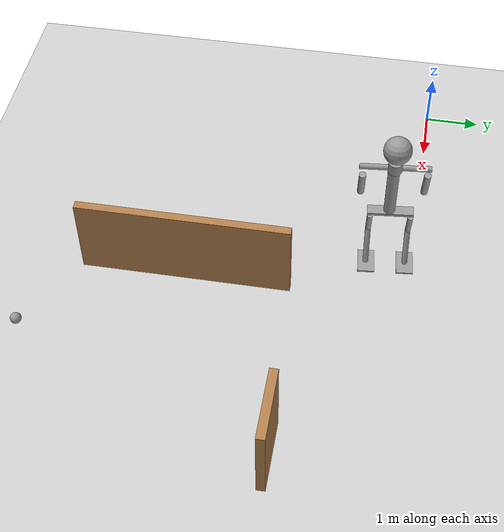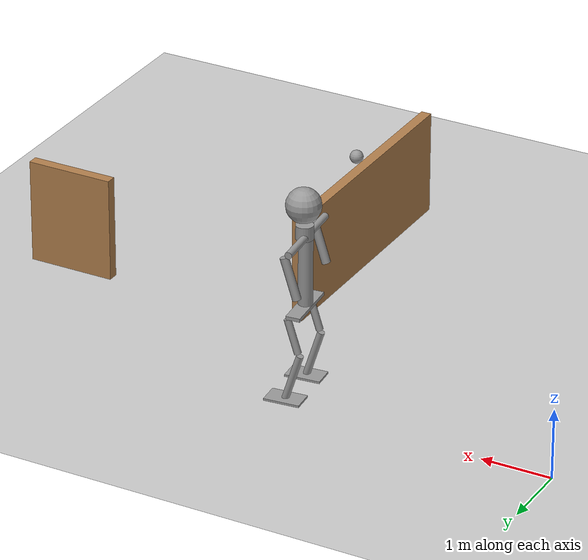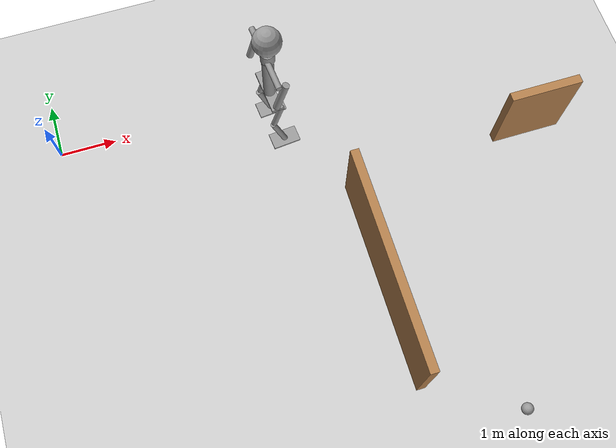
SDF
<sdf version="1.6">
 <world name="default">
  <model name="ground_plane">
   <static>1</static>
   <link name="link">
    <collision name="collision">
     <geometry><plane><normal>0 0 1</normal><size>100 100</size></plane></geometry>
     <surface><friction><ode><mu>100</mu><mu2>50</mu2></ode></friction></surface>
    </collision>
    <visual name="visual">
     <cast_shadows>0</cast_shadows>
     <geometry><plane><normal>0 0 1</normal><size>100 100</size></plane></geometry>
     <material>
      <script><uri>file://media/materials/scripts/gazebo.material</uri><name>Gazebo/Grey</name></script>
     </material>
    </visual>
   </link>
  </model>
  <model name="Building">
   <pose>-0.293126 -0.203944 0 0 -0 0</pose>
   <link name="Wall_21">
    <collision name="Wall_21_Collision">
     <geometry><box><size>3.75 0.15 1.5</size></box></geometry>
     <pose>0 0 0.75 0 -0 0</pose>
    </collision>
    <visual name="Wall_21_Visual">
     <pose>0 0 0.75 0 -0 0</pose>
     <geometry><box><size>3.75 0.15 1.5</size></box></geometry>
     <material>
      <script><uri>file://media/materials/scripts/gazebo.material</uri><name>Gazebo/Wood</name></script>
      <ambient>1 1 1 1</ambient>
     </material>
     <meta><layer>0</layer></meta>
    </visual>
    <pose>5.09526 -3.75796 0 0 -0 1.5708</pose>
   </link>
   <link name="Wall_60">
    <collision name="Wall_60_Collision">
     <geometry><box><size>1.25 0.15 1.5</size></box></geometry>
     <pose>0 0 0.75 0 -0 0</pose>
    </collision>
    <visual name="Wall_60_Visual">
     <pose>0 0 0.75 0 -0 0</pose>
     <geometry><box><size>1.25 0.15 1.5</size></box></geometry>
     <material>
      <script><uri>file://media/materials/scripts/gazebo.material</uri><name>Gazebo/Wood</name></script>
      <ambient>1 1 1 1</ambient>
     </material>
     <meta><layer>0</layer></meta>
    </visual>
    <pose>8.50626 -1.72796 0 0 -0 3.14159</pose>
   </link>
   <static>1</static>
  </model>
  <model name="HumanoidRobot_3">
   <model name="Untitled">
    <model name="HumanoidRobot">
     <link name="link_1">
      <pose>-0.173443 0.410402 2.12746 0 -0 0</pose>
      <inertial>
       <mass>0.94</mass>
       <inertia><ixx>0.1</ixx><ixy>0</ixy><ixz>0</ixz><iyy>0.1</iyy><iyz>0</iyz><izz>0.1</izz></inertia>
      </inertial>
      <visual name="visual">
       <geometry><sphere><radius>0.24</radius></sphere></geometry>
       <material>
        <lighting>1</lighting>
        <script><uri>file://media/materials/scripts/gazebo.material</uri><name>Gazebo/Grey</name></script>
        <shader type="pixel"><normal_map>__default__</normal_map></shader>
        <ambient>0.3 0.3 0.3 1</ambient>
        <diffuse>0.7 0.7 0.7 1</diffuse>
        <specular>0.01 0.01 0.01 1</specular>
        <emissive>0 0 0 1</emissive>
       </material>
      </visual>
      <collision name="collision">
       <geometry><sphere><radius>0.24</radius></sphere></geometry>
       <surface>
        <friction>
         <ode><mu>1</mu><mu2>1</mu2><fdir1>0 0 0</fdir1><slip1>0</slip1><slip2>0</slip2></ode>
         <torsional>
          <coefficient>1</coefficient>
          <patch_radius>0</patch_radius>
          <surface_radius>0</surface_radius>
          <use_patch_radius>1</use_patch_radius>
          <ode><slip>0</slip></ode>
         </torsional>
        </friction>
        <bounce><restitution_coefficient>0</restitution_coefficient><threshold>1e+06</threshold></bounce>
        <contact>
         <collide_without_contact>0</collide_without_contact>
         <collide_without_contact_bitmask>1</collide_without_contact_bitmask>
         <collide_bitmask>1</collide_bitmask>
         <ode>
          <soft_cfm>0</soft_cfm>
          <soft_erp>0.2</soft_erp>
          <kp>1e+13</kp>
          <kd>1</kd>
          <max_vel>0.01</max_vel>
          <min_depth>0</min_depth>
         </ode>
         <bullet>
          <split_impulse>1</split_impulse>
          <split_impulse_penetration_threshold>-0.01</split_impulse_penetration_threshold>
          <soft_cfm>0</soft_cfm>
          <soft_erp>0.2</soft_erp>
          <kp>1e+13</kp>
          <kd>1</kd>
         </bullet>
        </contact>
       </surface>
      </collision>
     </link>
     <link name="link_2">
      <pose>-0.183443 0.400402 1.74746 0 -0 0</pose>
      <inertial>
       <mass>1</mass>
       <inertia><ixx>0.145833</ixx><ixy>0</ixy><ixz>0</ixz><iyy>0.145833</iyy><iyz>0</iyz><izz>0.125</izz></inertia>
      </inertial>
      <visual name="visual">
       <geometry><cylinder><radius>0.12</radius><length>0.2</length></cylinder></geometry>
       <material>
        <lighting>1</lighting>
        <script><uri>file://media/materials/scripts/gazebo.material</uri><name>Gazebo/Grey</name></script>
        <shader type="pixel"><normal_map>__default__</normal_map></shader>
        <ambient>0.3 0.3 0.3 1</ambient>
        <diffuse>0.7 0.7 0.7 1</diffuse>
        <specular>0.01 0.01 0.01 1</specular>
        <emissive>0 0 0 1</emissive>
       </material>
      </visual>
      <collision name="collision">
       <geometry><cylinder><radius>0.12</radius><length>0.2</length></cylinder></geometry>
       <surface>
        <friction>
         <ode><mu>1</mu><mu2>1</mu2><fdir1>0 0 0</fdir1><slip1>0</slip1><slip2>0</slip2></ode>
         <torsional>
          <coefficient>1</coefficient>
          <patch_radius>0</patch_radius>
          <surface_radius>0</surface_radius>
          <use_patch_radius>1</use_patch_radius>
          <ode><slip>0</slip></ode>
         </torsional>
        </friction>
        <bounce><restitution_coefficient>0</restitution_coefficient><threshold>1e+06</threshold></bounce>
        <contact>
         <collide_without_contact>0</collide_without_contact>
         <collide_without_contact_bitmask>1</collide_without_contact_bitmask>
         <collide_bitmask>1</collide_bitmask>
         <ode>
          <soft_cfm>0</soft_cfm>
          <soft_erp>0.2</soft_erp>
          <kp>1e+13</kp>
          <kd>1</kd>
          <max_vel>0.01</max_vel>
          <min_depth>0</min_depth>
         </ode>
         <bullet>
          <split_impulse>1</split_impulse>
          <split_impulse_penetration_threshold>-0.01</split_impulse_penetration_threshold>
          <soft_cfm>0</soft_cfm>
          <soft_erp>0.2</soft_erp>
          <kp>1e+13</kp>
          <kd>1</kd>
         </bullet>
        </contact>
       </surface>
      </collision>
     </link>
     <link name="link_3">
      <pose>-0.218443 0.410402 1.69752 0 -0 0</pose>
      <inertial>
       <mass>1</mass>
       <inertia><ixx>0.145833</ixx><ixy>0</ixy><ixz>0</ixz><iyy>0.145833</iyy><iyz>0</iyz><izz>0.125</izz></inertia>
      </inertial>
      <visual name="visual">
       <pose>0 0 0 1.5707 -0 0</pose>
       <geometry><cylinder><radius>0.05</radius><length>1.2</length></cylinder></geometry>
       <material>
        <lighting>1</lighting>
        <script><uri>file://media/materials/scripts/gazebo.material</uri><name>Gazebo/Grey</name></script>
        <shader type="pixel"><normal_map>__default__</normal_map></shader>
        <ambient>0.3 0.3 0.3 1</ambient>
        <diffuse>0.7 0.7 0.7 1</diffuse>
        <specular>0.01 0.01 0.01 1</specular>
        <emissive>0 0 0 1</emissive>
       </material>
      </visual>
      <collision name="collision">
       <pose>0 0 0 1.5707 -0 0</pose>
       <geometry><cylinder><radius>0.05</radius><length>1.2</length></cylinder></geometry>
       <surface>
        <friction>
         <ode><mu>1</mu><mu2>1</mu2><fdir1>0 0 0</fdir1><slip1>0</slip1><slip2>0</slip2></ode>
         <torsional>
          <coefficient>1</coefficient>
          <patch_radius>0</patch_radius>
          <surface_radius>0</surface_radius>
          <use_patch_radius>1</use_patch_radius>
          <ode><slip>0</slip></ode>
         </torsional>
        </friction>
        <bounce><restitution_coefficient>0</restitution_coefficient><threshold>1e+06</threshold></bounce>
        <contact>
         <collide_without_contact>0</collide_without_contact>
         <collide_without_contact_bitmask>1</collide_without_contact_bitmask>
         <collide_bitmask>1</collide_bitmask>
         <ode>
          <soft_cfm>0</soft_cfm>
          <soft_erp>0.2</soft_erp>
          <kp>1e+13</kp>
          <kd>1</kd>
          <max_vel>0.01</max_vel>
          <min_depth>0</min_depth>
         </ode>
         <bullet>
          <split_impulse>1</split_impulse>
          <split_impulse_penetration_threshold>-0.01</split_impulse_penetration_threshold>
          <soft_cfm>0</soft_cfm>
          <soft_erp>0.2</soft_erp>
          <kp>1e+13</kp>
          <kd>1</kd>
         </bullet>
        </contact>
       </surface>
      </collision>
     </link>
     <link name="link_4">
      <pose>-0.173443 -0.129603 1.34313 0 -0 0</pose>
      <inertial>
       <mass>1</mass>
       <inertia><ixx>0.145833</ixx><ixy>0</ixy><ixz>0</ixz><iyy>0.145833</iyy><iyz>0</iyz><izz>0.125</izz></inertia>
      </inertial>
      <visual name="visual">
       <pose>0 0 0 0 0.3 0</pose>
       <geometry><cylinder><radius>0.06</radius><length>0.6</length></cylinder></geometry>
       <material>
        <lighting>1</lighting>
        <script><uri>file://media/materials/scripts/gazebo.material</uri><name>Gazebo/Grey</name></script>
        <shader type="pixel"><normal_map>__default__</normal_map></shader>
        <ambient>0.3 0.3 0.3 1</ambient>
        <diffuse>0.7 0.7 0.7 1</diffuse>
        <specular>0.01 0.01 0.01 1</specular>
        <emissive>0 0 0 1</emissive>
       </material>
      </visual>
      <collision name="collision">
       <pose>0 0 0 0 0.3 0</pose>
       <geometry><cylinder><radius>0.06</radius><length>0.6</length></cylinder></geometry>
       <surface>
        <friction>
         <ode><mu>1</mu><mu2>1</mu2><fdir1>0 0 0</fdir1><slip1>0</slip1><slip2>0</slip2></ode>
         <torsional>
          <coefficient>1</coefficient>
          <patch_radius>0</patch_radius>
          <surface_radius>0</surface_radius>
          <use_patch_radius>1</use_patch_radius>
          <ode><slip>0</slip></ode>
         </torsional>
        </friction>
        <bounce><restitution_coefficient>0</restitution_coefficient><threshold>1e+06</threshold></bounce>
        <contact>
         <collide_without_contact>0</collide_without_contact>
         <collide_without_contact_bitmask>1</collide_without_contact_bitmask>
         <collide_bitmask>1</collide_bitmask>
         <ode>
          <soft_cfm>0</soft_cfm>
          <soft_erp>0.2</soft_erp>
          <kp>1e+13</kp>
          <kd>1</kd>
          <max_vel>0.01</max_vel>
          <min_depth>0</min_depth>
         </ode>
         <bullet>
          <split_impulse>1</split_impulse>
          <split_impulse_penetration_threshold>-0.01</split_impulse_penetration_threshold>
          <soft_cfm>0</soft_cfm>
          <soft_erp>0.2</soft_erp>
          <kp>1e+13</kp>
          <kd>1</kd>
         </bullet>
        </contact>
       </surface>
      </collision>
     </link>
     <link name="link_4_clone">
      <pose>-0.224419 0.950407 1.34313 0 -0 0</pose>
      <inertial>
       <mass>1</mass>
       <inertia><ixx>0.145833</ixx><ixy>0</ixy><ixz>0</ixz><iyy>0.145833</iyy><iyz>0</iyz><izz>0.125</izz></inertia>
      </inertial>
      <visual name="visual">
       <pose>0 0 0 0 0.3 0</pose>
       <geometry><cylinder><radius>0.06</radius><length>0.6</length></cylinder></geometry>
       <material>
        <lighting>1</lighting>
        <script><uri>file://media/materials/scripts/gazebo.material</uri><name>Gazebo/Grey</name></script>
        <shader type="pixel"><normal_map>__default__</normal_map></shader>
        <ambient>0.3 0.3 0.3 1</ambient>
        <diffuse>0.7 0.7 0.7 1</diffuse>
        <specular>0.01 0.01 0.01 1</specular>
        <emissive>0 0 0 1</emissive>
       </material>
      </visual>
      <collision name="collision">
       <pose>0 0 0 0 0.3 0</pose>
       <geometry><cylinder><radius>0.06</radius><length>0.6</length></cylinder></geometry>
       <surface>
        <friction>
         <ode><mu>1</mu><mu2>1</mu2><fdir1>0 0 0</fdir1><slip1>0</slip1><slip2>0</slip2></ode>
         <torsional>
          <coefficient>1</coefficient>
          <patch_radius>0</patch_radius>
          <surface_radius>0</surface_radius>
          <use_patch_radius>1</use_patch_radius>
          <ode><slip>0</slip></ode>
         </torsional>
        </friction>
        <bounce><restitution_coefficient>0</restitution_coefficient><threshold>1e+06</threshold></bounce>
        <contact>
         <collide_without_contact>0</collide_without_contact>
         <collide_without_contact_bitmask>1</collide_without_contact_bitmask>
         <collide_bitmask>1</collide_bitmask>
         <ode>
          <soft_cfm>0</soft_cfm>
          <soft_erp>0.2</soft_erp>
          <kp>1e+13</kp>
          <kd>1</kd>
          <max_vel>0.01</max_vel>
          <min_depth>0</min_depth>
         </ode>
         <bullet>
          <split_impulse>1</split_impulse>
          <split_impulse_penetration_threshold>-0.01</split_impulse_penetration_threshold>
          <soft_cfm>0</soft_cfm>
          <soft_erp>0.2</soft_erp>
          <kp>1e+13</kp>
          <kd>1</kd>
         </bullet>
        </contact>
       </surface>
      </collision>
     </link>
     <link name="link_5">
      <pose>-0.193443 0.390402 1.14746 0 -0 0</pose>
      <inertial>
       <mass>1</mass>
       <inertia><ixx>0.145833</ixx><ixy>0</ixy><ixz>0</ixz><iyy>0.145833</iyy><iyz>0</iyz><izz>0.125</izz></inertia>
      </inertial>
      <visual name="visual">
       <geometry><cylinder><radius>0.1</radius><length>1</length></cylinder></geometry>
       <material>
        <lighting>1</lighting>
        <script><uri>file://media/materials/scripts/gazebo.material</uri><name>Gazebo/Grey</name></script>
        <shader type="pixel"><normal_map>__default__</normal_map></shader>
        <ambient>0.3 0.3 0.3 1</ambient>
        <diffuse>0.7 0.7 0.7 1</diffuse>
        <specular>0.01 0.01 0.01 1</specular>
        <emissive>0 0 0 1</emissive>
       </material>
      </visual>
      <collision name="collision">
       <geometry><cylinder><radius>0.1</radius><length>1</length></cylinder></geometry>
       <surface>
        <friction>
         <ode><mu>1</mu><mu2>1</mu2><fdir1>0 0 0</fdir1><slip1>0</slip1><slip2>0</slip2></ode>
         <torsional>
          <coefficient>1</coefficient>
          <patch_radius>0</patch_radius>
          <surface_radius>0</surface_radius>
          <use_patch_radius>1</use_patch_radius>
          <ode><slip>0</slip></ode>
         </torsional>
        </friction>
        <bounce><restitution_coefficient>0</restitution_coefficient><threshold>1e+06</threshold></bounce>
        <contact>
         <collide_without_contact>0</collide_without_contact>
         <collide_without_contact_bitmask>1</collide_without_contact_bitmask>
         <collide_bitmask>1</collide_bitmask>
         <ode>
          <soft_cfm>0</soft_cfm>
          <soft_erp>0.2</soft_erp>
          <kp>1e+13</kp>
          <kd>1</kd>
          <max_vel>0.01</max_vel>
          <min_depth>0</min_depth>
         </ode>
         <bullet>
          <split_impulse>1</split_impulse>
          <split_impulse_penetration_threshold>-0.01</split_impulse_penetration_threshold>
          <soft_cfm>0</soft_cfm>
          <soft_erp>0.2</soft_erp>
          <kp>1e+13</kp>
          <kd>1</kd>
         </bullet>
        </contact>
       </surface>
      </collision>
     </link>
     <link name="link_6">
      <pose>-0.193443 0.410402 0.672459 0 -0 0</pose>
      <inertial>
       <mass>1</mass>
       <inertia>
        <ixx>0.166667</ixx>
        <ixy>0</ixy>
        <ixz>0</ixz>
        <iyy>0.166667</iyy>
        <iyz>0</iyz>
        <izz>0.166667</izz>
       </inertia>
      </inertial>
      <visual name="visual">
       <geometry><box><size>0.2 0.8 0.05</size></box></geometry>
       <material>
        <lighting>1</lighting>
        <script><uri>file://media/materials/scripts/gazebo.material</uri><name>Gazebo/Grey</name></script>
        <shader type="pixel"><normal_map>__default__</normal_map></shader>
        <ambient>0.3 0.3 0.3 1</ambient>
        <diffuse>0.7 0.7 0.7 1</diffuse>
        <specular>0.01 0.01 0.01 1</specular>
        <emissive>0 0 0 1</emissive>
       </material>
      </visual>
      <collision name="collision">
       <geometry><box><size>0.2 0.8 0.05</size></box></geometry>
       <surface>
        <friction>
         <ode><mu>1</mu><mu2>1</mu2><fdir1>0 0 0</fdir1><slip1>0</slip1><slip2>0</slip2></ode>
         <torsional>
          <coefficient>1</coefficient>
          <patch_radius>0</patch_radius>
          <surface_radius>0</surface_radius>
          <use_patch_radius>1</use_patch_radius>
          <ode><slip>0</slip></ode>
         </torsional>
        </friction>
        <bounce><restitution_coefficient>0</restitution_coefficient><threshold>1e+06</threshold></bounce>
        <contact>
         <collide_without_contact>0</collide_without_contact>
         <collide_without_contact_bitmask>1</collide_without_contact_bitmask>
         <collide_bitmask>1</collide_bitmask>
         <ode>
          <soft_cfm>0</soft_cfm>
          <soft_erp>0.2</soft_erp>
          <kp>1e+13</kp>
          <kd>1</kd>
          <max_vel>0.01</max_vel>
          <min_depth>0</min_depth>
         </ode>
         <bullet>
          <split_impulse>1</split_impulse>
          <split_impulse_penetration_threshold>-0.01</split_impulse_penetration_threshold>
          <soft_cfm>0</soft_cfm>
          <soft_erp>0.2</soft_erp>
          <kp>1e+13</kp>
          <kd>1</kd>
         </bullet>
        </contact>
       </surface>
      </collision>
     </link>
     <link name="link_7">
      <pose>-0.18262 0.060402 0.393848 0 -0 0</pose>
      <inertial>
       <mass>1</mass>
       <inertia><ixx>0.145833</ixx><ixy>0</ixy><ixz>0</ixz><iyy>0.145833</iyy><iyz>0</iyz><izz>0.125</izz></inertia>
      </inertial>
      <visual name="visual">
       <pose>0 0 0 0 0.3 0</pose>
       <geometry><cylinder><radius>0.05</radius><length>0.5</length></cylinder></geometry>
       <material>
        <lighting>1</lighting>
        <script><uri>file://media/materials/scripts/gazebo.material</uri><name>Gazebo/Grey</name></script>
        <shader type="pixel"><normal_map>__default__</normal_map></shader>
        <ambient>0.3 0.3 0.3 1</ambient>
        <diffuse>0.7 0.7 0.7 1</diffuse>
        <specular>0.01 0.01 0.01 1</specular>
        <emissive>0 0 0 1</emissive>
       </material>
      </visual>
      <collision name="collision">
       <pose>0 0 0 0 0.3 0</pose>
       <geometry><cylinder><radius>0.05</radius><length>0.5</length></cylinder></geometry>
       <surface>
        <friction>
         <ode><mu>1</mu><mu2>1</mu2><fdir1>0 0 0</fdir1><slip1>0</slip1><slip2>0</slip2></ode>
         <torsional>
          <coefficient>1</coefficient>
          <patch_radius>0</patch_radius>
          <surface_radius>0</surface_radius>
          <use_patch_radius>1</use_patch_radius>
          <ode><slip>0</slip></ode>
         </torsional>
        </friction>
        <bounce><restitution_coefficient>0</restitution_coefficient><threshold>1e+06</threshold></bounce>
        <contact>
         <collide_without_contact>0</collide_without_contact>
         <collide_without_contact_bitmask>1</collide_without_contact_bitmask>
         <collide_bitmask>1</collide_bitmask>
         <ode>
          <soft_cfm>0</soft_cfm>
          <soft_erp>0.2</soft_erp>
          <kp>1e+13</kp>
          <kd>1</kd>
          <max_vel>0.01</max_vel>
          <min_depth>0</min_depth>
         </ode>
         <bullet>
          <split_impulse>1</split_impulse>
          <split_impulse_penetration_threshold>-0.01</split_impulse_penetration_threshold>
          <soft_cfm>0</soft_cfm>
          <soft_erp>0.2</soft_erp>
          <kp>1e+13</kp>
          <kd>1</kd>
         </bullet>
        </contact>
       </surface>
      </collision>
     </link>
     <link name="link_7_clone">
      <pose>-0.173443 0.760402 0.393849 0 -0 0</pose>
      <inertial>
       <mass>1</mass>
       <inertia><ixx>0.145833</ixx><ixy>0</ixy><ixz>0</ixz><iyy>0.145833</iyy><iyz>0</iyz><izz>0.125</izz></inertia>
      </inertial>
      <visual name="visual">
       <pose>0 0 0 0 0.3 0</pose>
       <geometry><cylinder><radius>0.05</radius><length>0.5</length></cylinder></geometry>
       <material>
        <lighting>1</lighting>
        <script><uri>file://media/materials/scripts/gazebo.material</uri><name>Gazebo/Grey</name></script>
        <shader type="pixel"><normal_map>__default__</normal_map></shader>
        <ambient>0.3 0.3 0.3 1</ambient>
        <diffuse>0.7 0.7 0.7 1</diffuse>
        <specular>0.01 0.01 0.01 1</specular>
        <emissive>0 0 0 1</emissive>
       </material>
      </visual>
      <collision name="collision">
       <pose>0 0 0 0 0.3 0</pose>
       <geometry><cylinder><radius>0.05</radius><length>0.5</length></cylinder></geometry>
       <surface>
        <friction>
         <ode><mu>1</mu><mu2>1</mu2><fdir1>0 0 0</fdir1><slip1>0</slip1><slip2>0</slip2></ode>
         <torsional>
          <coefficient>1</coefficient>
          <patch_radius>0</patch_radius>
          <surface_radius>0</surface_radius>
          <use_patch_radius>1</use_patch_radius>
          <ode><slip>0</slip></ode>
         </torsional>
        </friction>
        <bounce><restitution_coefficient>0</restitution_coefficient><threshold>1e+06</threshold></bounce>
        <contact>
         <collide_without_contact>0</collide_without_contact>
         <collide_without_contact_bitmask>1</collide_without_contact_bitmask>
         <collide_bitmask>1</collide_bitmask>
         <ode>
          <soft_cfm>0</soft_cfm>
          <soft_erp>0.2</soft_erp>
          <kp>1e+13</kp>
          <kd>1</kd>
          <max_vel>0.01</max_vel>
          <min_depth>0</min_depth>
         </ode>
         <bullet>
          <split_impulse>1</split_impulse>
          <split_impulse_penetration_threshold>-0.01</split_impulse_penetration_threshold>
          <soft_cfm>0</soft_cfm>
          <soft_erp>0.2</soft_erp>
          <kp>1e+13</kp>
          <kd>1</kd>
         </bullet>
        </contact>
       </surface>
      </collision>
     </link>
     <link name="link_8">
      <pose>-0.173443 0.060402 -0.208906 0 -0 0</pose>
      <inertial>
       <mass>1</mass>
       <inertia><ixx>0.145833</ixx><ixy>0</ixy><ixz>0</ixz><iyy>0.145833</iyy><iyz>0</iyz><izz>0.125</izz></inertia>
      </inertial>
      <visual name="visual">
       <pose>0 0 0 0 -0.3 0</pose>
       <geometry><cylinder><radius>0.05</radius><length>0.7</length></cylinder></geometry>
       <material>
        <lighting>1</lighting>
        <script><uri>file://media/materials/scripts/gazebo.material</uri><name>Gazebo/Grey</name></script>
        <shader type="pixel"><normal_map>__default__</normal_map></shader>
        <ambient>0.3 0.3 0.3 1</ambient>
        <diffuse>0.7 0.7 0.7 1</diffuse>
        <specular>0.01 0.01 0.01 1</specular>
        <emissive>0 0 0 1</emissive>
       </material>
      </visual>
      <collision name="collision">
       <pose>0 0 0 0 -0.3 0</pose>
       <geometry><cylinder><radius>0.05</radius><length>0.7</length></cylinder></geometry>
       <surface>
        <friction>
         <ode><mu>1</mu><mu2>1</mu2><fdir1>0 0 0</fdir1><slip1>0</slip1><slip2>0</slip2></ode>
         <torsional>
          <coefficient>1</coefficient>
          <patch_radius>0</patch_radius>
          <surface_radius>0</surface_radius>
          <use_patch_radius>1</use_patch_radius>
          <ode><slip>0</slip></ode>
         </torsional>
        </friction>
        <bounce><restitution_coefficient>0</restitution_coefficient><threshold>1e+06</threshold></bounce>
        <contact>
         <collide_without_contact>0</collide_without_contact>
         <collide_without_contact_bitmask>1</collide_without_contact_bitmask>
         <collide_bitmask>1</collide_bitmask>
         <ode>
          <soft_cfm>0</soft_cfm>
          <soft_erp>0.2</soft_erp>
          <kp>1e+13</kp>
          <kd>1</kd>
          <max_vel>0.01</max_vel>
          <min_depth>0</min_depth>
         </ode>
         <bullet>
          <split_impulse>1</split_impulse>
          <split_impulse_penetration_threshold>-0.01</split_impulse_penetration_threshold>
          <soft_cfm>0</soft_cfm>
          <soft_erp>0.2</soft_erp>
          <kp>1e+13</kp>
          <kd>1</kd>
         </bullet>
        </contact>
       </surface>
      </collision>
     </link>
     <link name="link_8_clone">
      <pose>-0.173443 0.760402 -0.208905 0 -0 0</pose>
      <inertial>
       <mass>1</mass>
       <inertia><ixx>0.145833</ixx><ixy>0</ixy><ixz>0</ixz><iyy>0.145833</iyy><iyz>0</iyz><izz>0.125</izz></inertia>
      </inertial>
      <visual name="visual">
       <pose>0 0 0 0 -0.3 0</pose>
       <geometry><cylinder><radius>0.05</radius><length>0.7</length></cylinder></geometry>
       <material>
        <lighting>1</lighting>
        <script><uri>file://media/materials/scripts/gazebo.material</uri><name>Gazebo/Grey</name></script>
        <shader type="pixel"><normal_map>__default__</normal_map></shader>
        <ambient>0.3 0.3 0.3 1</ambient>
        <diffuse>0.7 0.7 0.7 1</diffuse>
        <specular>0.01 0.01 0.01 1</specular>
        <emissive>0 0 0 1</emissive>
       </material>
      </visual>
      <collision name="collision">
       <pose>0 0 0 0 -0.3 0</pose>
       <geometry><cylinder><radius>0.05</radius><length>0.7</length></cylinder></geometry>
       <surface>
        <friction>
         <ode><mu>1</mu><mu2>1</mu2><fdir1>0 0 0</fdir1><slip1>0</slip1><slip2>0</slip2></ode>
         <torsional>
          <coefficient>1</coefficient>
          <patch_radius>0</patch_radius>
          <surface_radius>0</surface_radius>
          <use_patch_radius>1</use_patch_radius>
          <ode><slip>0</slip></ode>
         </torsional>
        </friction>
        <bounce><restitution_coefficient>0</restitution_coefficient><threshold>1e+06</threshold></bounce>
        <contact>
         <collide_without_contact>0</collide_without_contact>
         <collide_without_contact_bitmask>1</collide_without_contact_bitmask>
         <collide_bitmask>1</collide_bitmask>
         <ode>
          <soft_cfm>0</soft_cfm>
          <soft_erp>0.2</soft_erp>
          <kp>1e+13</kp>
          <kd>1</kd>
          <max_vel>0.01</max_vel>
          <min_depth>0</min_depth>
         </ode>
         <bullet>
          <split_impulse>1</split_impulse>
          <split_impulse_penetration_threshold>-0.01</split_impulse_penetration_threshold>
          <soft_cfm>0</soft_cfm>
          <soft_erp>0.2</soft_erp>
          <kp>1e+13</kp>
          <kd>1</kd>
         </bullet>
        </contact>
       </surface>
      </collision>
     </link>
     <link name="link_9">
      <pose>-0.073443 0.072902 -0.54305 0 -0 0</pose>
      <inertial>
       <mass>1</mass>
       <inertia>
        <ixx>0.166667</ixx>
        <ixy>0</ixy>
        <ixz>0</ixz>
        <iyy>0.166667</iyy>
        <iyz>0</iyz>
        <izz>0.166667</izz>
       </inertia>
      </inertial>
      <visual name="visual">
       <geometry><box><size>0.5 0.3 0.03</size></box></geometry>
       <material>
        <lighting>1</lighting>
        <script><uri>file://media/materials/scripts/gazebo.material</uri><name>Gazebo/Grey</name></script>
        <shader type="pixel"><normal_map>__default__</normal_map></shader>
        <ambient>0.3 0.3 0.3 1</ambient>
        <diffuse>0.7 0.7 0.7 1</diffuse>
        <specular>0.01 0.01 0.01 1</specular>
        <emissive>0 0 0 1</emissive>
       </material>
      </visual>
      <collision name="collision">
       <geometry><box><size>0.5 0.3 0.03</size></box></geometry>
       <surface>
        <friction>
         <ode><mu>1</mu><mu2>1</mu2><fdir1>0 0 0</fdir1><slip1>0</slip1><slip2>0</slip2></ode>
         <torsional>
          <coefficient>1</coefficient>
          <patch_radius>0</patch_radius>
          <surface_radius>0</surface_radius>
          <use_patch_radius>1</use_patch_radius>
          <ode><slip>0</slip></ode>
         </torsional>
        </friction>
        <bounce><restitution_coefficient>0</restitution_coefficient><threshold>1e+06</threshold></bounce>
        <contact>
         <collide_without_contact>0</collide_without_contact>
         <collide_without_contact_bitmask>1</collide_without_contact_bitmask>
         <collide_bitmask>1</collide_bitmask>
         <ode>
          <soft_cfm>0</soft_cfm>
          <soft_erp>0.2</soft_erp>
          <kp>1e+13</kp>
          <kd>1</kd>
          <max_vel>0.01</max_vel>
          <min_depth>0</min_depth>
         </ode>
         <bullet>
          <split_impulse>1</split_impulse>
          <split_impulse_penetration_threshold>-0.01</split_impulse_penetration_threshold>
          <soft_cfm>0</soft_cfm>
          <soft_erp>0.2</soft_erp>
          <kp>1e+13</kp>
          <kd>1</kd>
         </bullet>
        </contact>
       </surface>
      </collision>
     </link>
     <link name="link_9_clone">
      <pose>-0.073443 0.760402 -0.543049 0 -0 0</pose>
      <inertial>
       <mass>1</mass>
       <inertia>
        <ixx>0.166667</ixx>
        <ixy>0</ixy>
        <ixz>0</ixz>
        <iyy>0.166667</iyy>
        <iyz>0</iyz>
        <izz>0.166667</izz>
       </inertia>
      </inertial>
      <visual name="visual">
       <geometry><box><size>0.5 0.3 0.03</size></box></geometry>
       <material>
        <lighting>1</lighting>
        <script><uri>file://media/materials/scripts/gazebo.material</uri><name>Gazebo/Grey</name></script>
        <shader type="pixel"><normal_map>__default__</normal_map></shader>
        <ambient>0.3 0.3 0.3 1</ambient>
        <diffuse>0.7 0.7 0.7 1</diffuse>
        <specular>0.01 0.01 0.01 1</specular>
        <emissive>0 0 0 1</emissive>
       </material>
      </visual>
      <collision name="collision">
       <geometry><box><size>0.5 0.3 0.03</size></box></geometry>
       <surface>
        <friction>
         <ode><mu>1</mu><mu2>1</mu2><fdir1>0 0 0</fdir1><slip1>0</slip1><slip2>0</slip2></ode>
         <torsional>
          <coefficient>1</coefficient>
          <patch_radius>0</patch_radius>
          <surface_radius>0</surface_radius>
          <use_patch_radius>1</use_patch_radius>
          <ode><slip>0</slip></ode>
         </torsional>
        </friction>
        <bounce><restitution_coefficient>0</restitution_coefficient><threshold>1e+06</threshold></bounce>
        <contact>
         <collide_without_contact>0</collide_without_contact>
         <collide_without_contact_bitmask>1</collide_without_contact_bitmask>
         <collide_bitmask>1</collide_bitmask>
         <ode>
          <soft_cfm>0</soft_cfm>
          <soft_erp>0.2</soft_erp>
          <kp>1e+13</kp>
          <kd>1</kd>
          <max_vel>0.01</max_vel>
          <min_depth>0</min_depth>
         </ode>
         <bullet>
          <split_impulse>1</split_impulse>
          <split_impulse_penetration_threshold>-0.01</split_impulse_penetration_threshold>
          <soft_cfm>0</soft_cfm>
          <soft_erp>0.2</soft_erp>
          <kp>1e+13</kp>
          <kd>1</kd>
         </bullet>
        </contact>
       </surface>
      </collision>
     </link>
     <joint name="link_1_JOINT_0" type="fixed">
      <parent>link_1</parent>
      <child>link_2</child>
      <axis>
       <xyz>1 0 0</xyz>
       <use_parent_model_frame>0</use_parent_model_frame>
       <limit>
        <lower>-1.79769e+308</lower>
        <upper>1.79769e+308</upper>
        <effort>-1</effort>
        <velocity>-1</velocity>
       </limit>
       <dynamics>
        <spring_reference>0</spring_reference>
        <spring_stiffness>0</spring_stiffness>
        <damping>0</damping>
       </dynamics>
      </axis>
      <physics>
       <ode><limit><cfm>0</cfm><erp>0.2</erp></limit><suspension><cfm>0</cfm><erp>0.2</erp></suspension></ode>
      </physics>
     </joint>
     <joint name="link_2_JOINT_1" type="fixed">
      <parent>link_2</parent>
      <child>link_3</child>
      <axis>
       <xyz>1 0 0</xyz>
       <use_parent_model_frame>0</use_parent_model_frame>
       <limit>
        <lower>-1.79769e+308</lower>
        <upper>1.79769e+308</upper>
        <effort>-1</effort>
        <velocity>-1</velocity>
       </limit>
       <dynamics>
        <spring_reference>0</spring_reference>
        <spring_stiffness>0</spring_stiffness>
        <damping>0</damping>
       </dynamics>
      </axis>
      <physics>
       <ode><limit><cfm>0</cfm><erp>0.2</erp></limit><suspension><cfm>0</cfm><erp>0.2</erp></suspension></ode>
      </physics>
     </joint>
     <joint name="link_2_JOINT_4" type="fixed">
      <parent>link_2</parent>
      <child>link_5</child>
      <axis>
       <xyz>0 0 1</xyz>
       <use_parent_model_frame>0</use_parent_model_frame>
       <limit>
        <lower>-1.79769e+308</lower>
        <upper>1.79769e+308</upper>
        <effort>-1</effort>
        <velocity>-1</velocity>
       </limit>
       <dynamics>
        <spring_reference>0</spring_reference>
        <spring_stiffness>0</spring_stiffness>
        <damping>0</damping>
       </dynamics>
      </axis>
      <physics>
       <ode><limit><cfm>0</cfm><erp>0.2</erp></limit><suspension><cfm>0</cfm><erp>0.2</erp></suspension></ode>
      </physics>
     </joint>
     <joint name="link_3_JOINT_2" type="fixed">
      <parent>link_3</parent>
      <child>link_4</child>
      <axis>
       <xyz>1 0 0</xyz>
       <use_parent_model_frame>0</use_parent_model_frame>
       <limit>
        <lower>-1.79769e+308</lower>
        <upper>1.79769e+308</upper>
        <effort>-1</effort>
        <velocity>-1</velocity>
       </limit>
       <dynamics>
        <spring_reference>0</spring_reference>
        <spring_stiffness>0</spring_stiffness>
        <damping>0</damping>
       </dynamics>
      </axis>
      <physics>
       <ode><limit><cfm>0</cfm><erp>0.2</erp></limit><suspension><cfm>0</cfm><erp>0.2</erp></suspension></ode>
      </physics>
     </joint>
     <joint name="link_3_JOINT_3" type="fixed">
      <parent>link_3</parent>
      <child>link_4_clone</child>
      <axis>
       <xyz>1 0 0</xyz>
       <use_parent_model_frame>0</use_parent_model_frame>
       <limit>
        <lower>-1.79769e+308</lower>
        <upper>1.79769e+308</upper>
        <effort>-1</effort>
        <velocity>-1</velocity>
       </limit>
       <dynamics>
        <spring_reference>0</spring_reference>
        <spring_stiffness>0</spring_stiffness>
        <damping>0</damping>
       </dynamics>
      </axis>
      <physics>
       <ode><limit><cfm>0</cfm><erp>0.2</erp></limit><suspension><cfm>0</cfm><erp>0.2</erp></suspension></ode>
      </physics>
     </joint>
     <joint name="link_5_JOINT_5" type="fixed">
      <parent>link_5</parent>
      <child>link_6</child>
      <axis>
       <xyz>0 0 1</xyz>
       <use_parent_model_frame>0</use_parent_model_frame>
       <limit>
        <lower>-1.79769e+308</lower>
        <upper>1.79769e+308</upper>
        <effort>-1</effort>
        <velocity>-1</velocity>
       </limit>
       <dynamics>
        <spring_reference>0</spring_reference>
        <spring_stiffness>0</spring_stiffness>
        <damping>0</damping>
       </dynamics>
      </axis>
      <physics>
       <ode><limit><cfm>0</cfm><erp>0.2</erp></limit><suspension><cfm>0</cfm><erp>0.2</erp></suspension></ode>
      </physics>
     </joint>
     <joint name="link_6_JOINT_6" type="fixed">
      <parent>link_6</parent>
      <child>link_7</child>
      <axis>
       <xyz>0 1 0</xyz>
       <use_parent_model_frame>0</use_parent_model_frame>
       <limit>
        <lower>-1.79769e+308</lower>
        <upper>1.79769e+308</upper>
        <effort>-1</effort>
        <velocity>-1</velocity>
       </limit>
       <dynamics>
        <spring_reference>0</spring_reference>
        <spring_stiffness>0</spring_stiffness>
        <damping>0</damping>
        <friction>0</friction>
       </dynamics>
      </axis>
      <physics>
       <ode><limit><cfm>0</cfm><erp>0.2</erp></limit><suspension><cfm>0</cfm><erp>0.2</erp></suspension></ode>
      </physics>
     </joint>
     <joint name="link_6_JOINT_7" type="fixed">
      <parent>link_6</parent>
      <child>link_7_clone</child>
      <axis>
       <xyz>0 1 0</xyz>
       <use_parent_model_frame>0</use_parent_model_frame>
       <limit>
        <lower>-1.79769e+308</lower>
        <upper>1.79769e+308</upper>
        <effort>-1</effort>
        <velocity>-1</velocity>
       </limit>
       <dynamics>
        <spring_reference>0</spring_reference>
        <spring_stiffness>0</spring_stiffness>
        <damping>0</damping>
       </dynamics>
      </axis>
      <physics>
       <ode><limit><cfm>0</cfm><erp>0.2</erp></limit><suspension><cfm>0</cfm><erp>0.2</erp></suspension></ode>
      </physics>
     </joint>
     <joint name="link_7_JOINT_8" type="fixed">
      <parent>link_7</parent>
      <child>link_8</child>
      <axis>
       <xyz>0 1 0</xyz>
       <use_parent_model_frame>0</use_parent_model_frame>
       <limit>
        <lower>-1.79769e+308</lower>
        <upper>1.79769e+308</upper>
        <effort>-1</effort>
        <velocity>-1</velocity>
       </limit>
       <dynamics>
        <spring_reference>0</spring_reference>
        <spring_stiffness>0</spring_stiffness>
        <damping>0</damping>
       </dynamics>
      </axis>
      <physics>
       <ode><limit><cfm>0</cfm><erp>0.2</erp></limit><suspension><cfm>0</cfm><erp>0.2</erp></suspension></ode>
      </physics>
     </joint>
     <joint name="link_7_clone_JOINT_9" type="fixed">
      <parent>link_7_clone</parent>
      <child>link_8_clone</child>
      <axis>
       <xyz>0 1 0</xyz>
       <use_parent_model_frame>0</use_parent_model_frame>
       <limit>
        <lower>-1.79769e+308</lower>
        <upper>1.79769e+308</upper>
        <effort>-1</effort>
        <velocity>-1</velocity>
       </limit>
       <dynamics>
        <spring_reference>0</spring_reference>
        <spring_stiffness>0</spring_stiffness>
        <damping>0</damping>
       </dynamics>
      </axis>
      <physics>
       <ode><limit><cfm>0</cfm><erp>0.2</erp></limit><suspension><cfm>0</cfm><erp>0.2</erp></suspension></ode>
      </physics>
     </joint>
     <joint name="link_8_JOINT_10" type="fixed">
      <parent>link_8</parent>
      <child>link_9</child>
      <axis>
       <xyz>0 1 0</xyz>
       <use_parent_model_frame>0</use_parent_model_frame>
       <limit>
        <lower>-1.79769e+308</lower>
        <upper>1.79769e+308</upper>
        <effort>-1</effort>
        <velocity>-1</velocity>
       </limit>
       <dynamics>
        <spring_reference>0</spring_reference>
        <spring_stiffness>0</spring_stiffness>
        <damping>0</damping>
       </dynamics>
      </axis>
      <physics>
       <ode><limit><cfm>0</cfm><erp>0.2</erp></limit><suspension><cfm>0</cfm><erp>0.2</erp></suspension></ode>
      </physics>
     </joint>
     <joint name="link_8_clone_JOINT_11" type="fixed">
      <parent>link_8_clone</parent>
      <child>link_9_clone</child>
      <axis>
       <xyz>0 1 0</xyz>
       <use_parent_model_frame>0</use_parent_model_frame>
       <limit>
        <lower>-1.79769e+308</lower>
        <upper>1.79769e+308</upper>
        <effort>-1</effort>
        <velocity>-1</velocity>
       </limit>
       <dynamics>
        <spring_reference>0</spring_reference>
        <spring_stiffness>0</spring_stiffness>
        <damping>0</damping>
       </dynamics>
      </axis>
      <physics>
       <ode><limit><cfm>0</cfm><erp>0.2</erp></limit><suspension><cfm>0</cfm><erp>0.2</erp></suspension></ode>
      </physics>
     </joint>
     <static>0</static>
     <pose>-3e-06 -2e-06 -0 0 -0 0</pose>
    </model>
    <static>1</static>
    <pose>-3e-06 3e-06 0 0 -0 0</pose>
   </model>
   <static>1</static>
   <pose>4.05093 -0.893169 0.558048 1e-06 -1e-06 0.094595</pose>
  </model>
  <model name="my_ball">
   <link name="link_0">
    <inertial>
     <mass>1</mass>
     <inertia><ixx>0.1</ixx><ixy>0</ixy><ixz>0</ixz><iyy>0.1</iyy><iyz>0</iyz><izz>0.1</izz></inertia>
    </inertial>
    <visual name="visual">
     <geometry><sphere><radius>0.1</radius></sphere></geometry>
     <material>
      <lighting>1</lighting>
      <script><uri>file://media/materials/scripts/gazebo.material</uri><name>Gazebo/Grey</name></script>
      <ambient>1 1 1 1</ambient>
      <diffuse>1 1 1 1</diffuse>
      <specular>0.01 1 1 1</specular>
      <emissive>1 1 1 1</emissive>
      <shader type="vertex"><normal_map>__default__</normal_map></shader>
     </material>
    </visual>
    <collision name="collision">
     <geometry><sphere><radius>0.1</radius></sphere></geometry>
     <surface>
      <friction>
       <ode><mu>1</mu><mu2>1</mu2><fdir1>0 0 0</fdir1><slip1>0</slip1><slip2>0</slip2></ode>
       <torsional>
        <coefficient>1</coefficient>
        <patch_radius>0</patch_radius>
        <surface_radius>0</surface_radius>
        <use_patch_radius>1</use_patch_radius>
        <ode><slip>0</slip></ode>
       </torsional>
      </friction>
      <bounce><restitution_coefficient>0</restitution_coefficient><threshold>1e+06</threshold></bounce>
      <contact>
       <collide_without_contact>0</collide_without_contact>
       <collide_without_contact_bitmask>1</collide_without_contact_bitmask>
       <collide_bitmask>1</collide_bitmask>
       <ode>
        <soft_cfm>0</soft_cfm>
        <soft_erp>0.2</soft_erp>
        <kp>1e+13</kp>
        <kd>1</kd>
        <max_vel>0.01</max_vel>
        <min_depth>0</min_depth>
       </ode>
       <bullet>
        <split_impulse>1</split_impulse>
        <split_impulse_penetration_threshold>-0.01</split_impulse_penetration_threshold>
        <soft_cfm>0</soft_cfm>
        <soft_erp>0.2</soft_erp>
        <kp>1e+13</kp>
        <kd>1</kd>
       </bullet>
      </contact>
     </surface>
    </collision>
   </link>
   <static>0</static>
   <pose>6.3151 -6.63297 0.1 0 -0 0</pose>
  </model>
 </world>
</sdf>
